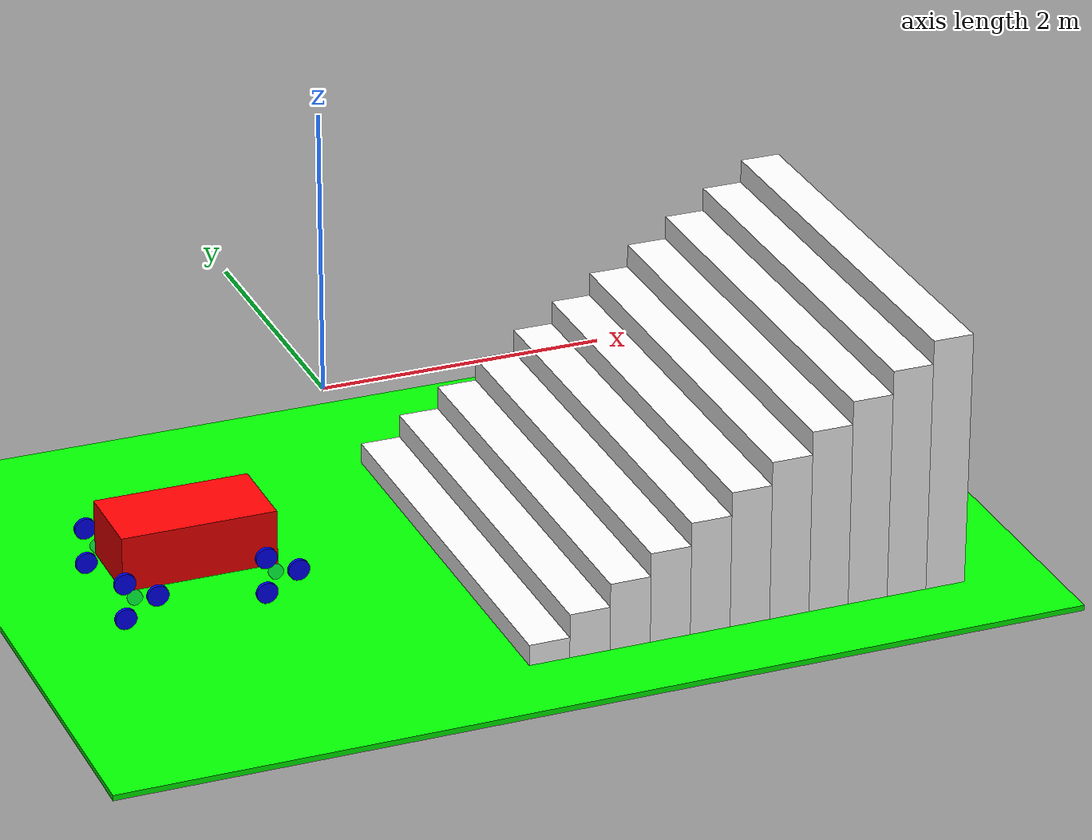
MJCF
<mujoco model="env">
    <option timestep="0.005" />
    <actuator>
        <velocity gear="1.0" ctrllimited = "false" ctrlrange="-40.0 40.0" joint="wheel00" name="motor00"/>
        <velocity gear="1.0" ctrllimited = "false" ctrlrange="-40.0 40.0" joint="wheel01" name="motor01"/>
        <velocity gear="1.0" ctrllimited = "false" ctrlrange="-40.0 40.0" joint="wheel01" name="motor02"/>
        <velocity gear="1.0" ctrllimited = "false" ctrlrange="-40.0 40.0" joint="wheel01" name="motor03"/>
        <velocity gear="1.0" ctrllimited = "false" ctrlrange="-40.0 40.0" joint="wheel10" name="motor10"/>
        <velocity gear="1.0" ctrllimited = "false" ctrlrange="-40.0 40.0" joint="wheel11" name="motor11"/>
        <velocity gear="1.0" ctrllimited = "false" ctrlrange="-40.0 40.0" joint="wheel12" name="motor12"/>
        <velocity gear="1.0" ctrllimited = "false" ctrlrange="-40.0 40.0" joint="wheel13" name="motor13"/>
        <velocity gear="1.0" ctrllimited = "false" ctrlrange="-40.0 40.0" joint="wheel20" name="motor20"/>
        <velocity gear="1.0" ctrllimited = "false" ctrlrange="-40.0 40.0" joint="wheel21" name="motor21"/>
        <velocity gear="1.0" ctrllimited = "false" ctrlrange="-40.0 40.0" joint="wheel22" name="motor22"/>
        <velocity gear="1.0" ctrllimited = "false" ctrlrange="-40.0 40.0" joint="wheel23" name="motor23"/>
        <velocity gear="1.0" ctrllimited = "false" ctrlrange="-40.0 40.0" joint="wheel30" name="motor30"/>
        <velocity gear="1.0" ctrllimited = "false" ctrlrange="-40.0 40.0" joint="wheel31" name="motor31"/>
        <velocity gear="1.0" ctrllimited = "false" ctrlrange="-40.0 40.0" joint="wheel32" name="motor32"/>
        <velocity gear="1.0" ctrllimited = "false" ctrlrange="-40.0 40.0" joint="wheel33" name="motor33"/>
    </actuator>

    <worldbody>
        <body name="frame" pos="-1.0 0 -0.9" quat="1.0 0.0 0 0">
            <geom mass="50.0" pos="0 0 0" rgba="1 0 0 1" size="0.55 0.3 0.2" type="box"></geom>
            <joint type='free' name='frame:base' pos='0 0 0'/>
			<camera euler="0 0 0" fovy="40" name="rgb" pos="0 0 2.5"></camera>

            <body name="lf_wheel_asm" pos="0.5 -0.4 -0.2" quat="0.7071067811865476 0.7071067811865476 0 0">
                <geom mass="0.0001" rgba="0 0 1 0.25" size="0.0524 0.0125" type="cylinder"/>
                <joint axis="0 0 1" name="wheel00" type="hinge"/>

                <body name="lf_wheel_0" pos="0.1524 0.0 0.03">
                    <geom mass="1" rgba="0 0 1 1" size="0.0762 0.0125" type="cylinder"/>
                    <joint axis="0 0 1" name="wheel01" type="hinge"/>
                </body>

                <body name="lf_wheel_1" pos="-0.0762 0.13198 0.03">
                    <geom mass="1" rgba="0 0 1 1" size="0.0762 0.0125" type="cylinder"/>
                    <joint axis="0 0 1" name="wheel02" type="hinge"/>
                </body>

                <body name="lf_wheel_2" pos="-0.0762 -0.13198 0.03" >
                    <geom mass="1" rgba="0 0 1 1" size="0.0762 0.0125" type="cylinder"/>
                    <joint axis="0 0 1" name="wheel03" type="hinge"/>
                </body>
            </body>

            <body name="rf_wheel_asm" pos="0.5 0.4 -0.2" quat="0.7071067811865476 0.7071067811865476 0 0">
                <geom mass="1" rgba="0 0 1 0.25" size="0.0524 0.0125" type="cylinder"/>
                <joint axis="0 0 1" name="wheel10" type="hinge"/>

                <body name="rf_wheel_0" pos="0.1524 0.0 -0.03">
                    <geom mass="1" rgba="0 0 1 1" size="0.0762 0.0125" type="cylinder"/>
                    <joint axis="0 0 1" name="wheel11" type="hinge"/>
                </body>

                <body name="rf_wheel_1" pos="-0.0762 0.13198 -0.03">
                    <geom mass="1" rgba="0 0 1 1" size="0.0762 0.0125" type="cylinder"/>
                    <joint axis="0 0 1" name="wheel12" type="hinge"/>
                </body>

                <body name="rf_wheel_2" pos="-0.0762 -0.13198 -0.03" >
                    <geom mass="1" rgba="0 0 1 1" size="0.0762 0.0125" type="cylinder"/>
                    <joint axis="0 0 1" name="wheel13" type="hinge"/>
                </body>
            </body>

            <body name="lb_wheel_asm" pos="-0.5 -0.4 -0.2" quat="0.7071067811865476 0.7071067811865476 0 0">>
                <geom mass="1" rgba="0 0 1 0.25" size="0.0524 0.0125" type="cylinder"/>
                <joint axis="0 0 1" name="wheel20" type="hinge"/>
                <body name="lb_wheel_0" pos="0.1524 0.0 0.03">
                    <geom mass="1" rgba="0 0 1 1" size="0.0762 0.0125" type="cylinder"/>
                    <joint axis="0 0 1" name="wheel21" type="hinge"/>
                </body>

                <body name="lb_wheel_1" pos="-0.0762 0.13198 0.03">
                    <geom mass="1" rgba="0 0 1 1" size="0.0762 0.0125" type="cylinder"/>
                    <joint axis="0 0 1" name="wheel22" type="hinge"/>
                </body>

                <body name="lb_wheel_2" pos="-0.0762 -0.13198 0.03" >
                    <geom mass="1" rgba="0 0 1 1" size="0.0762 0.0125" type="cylinder"/>
                    <joint axis="0 0 1" name="wheel23" type="hinge"/>
                </body>
            </body>

            <body name="rb_wheel_asm" pos="-0.5 0.4 -0.2" quat="0.7071067811865476 0.7071067811865476 0 0">>
                <geom mass="1" rgba="0 0 1 0.25" size="0.0524 0.0125" type="cylinder"/>
                <joint axis="0 0 1" name="wheel30" type="hinge"/>

                <body name="rb_wheel_0" pos="0.1524 0.0 -0.03">
                    <geom mass="1" rgba="0 0 1 1" size="0.0762 0.0125" type="cylinder"/>
                    <joint axis="0 0 1" name="wheel31" type="hinge"/>
                </body>

                <body name="rb_wheel_1" pos="-0.0762 0.13198 -0.03">
                    <geom mass="1" rgba="0 0 1 1" size="0.0762 0.0125" type="cylinder"/>
                    <joint axis="0 0 1" name="wheel32" type="hinge"/>
                </body>

                <body name="rb_wheel_2" pos="-0.0762 -0.13198 -0.03" >
                    <geom mass="1" rgba="0 0 1 1" size="0.0762 0.0125" type="cylinder"/>
                    <joint axis="0 0 1" name="wheel33" type="hinge"/>
                </body>
            </body>
        </body>

        <body name="floor" pos="0 0 -1.5">
            <geom condim="3" size="20.0 20.0 0.02" rgba="0 1 0 1" type="box"/>
            <body name="step0" pos="1.0 0 0.08636">
                <geom condim="3" size="0.14605 1.61 0.08636" rgba="1 1 1 1" type="box"/>
            </body>
            <body name="step1" pos="1.2921 0.0 0.17272">
                <geom condim="3" size="0.14605 1.61 0.17272" rgba="1 1 1 1" type="box"/>
            </body>
            <body name="step2" pos="1.5842 0.0 0.25908">
                <geom condim="3" size="0.14605 1.61 0.25908" rgba="1 1 1 1" type="box"/>
            </body>
            <body name="step3" pos="1.8763 0.0 0.34544">
                <geom condim="3" size="0.14605 1.61 0.34544" rgba="1 1 1 1" type="box"/>
            </body>
            <body name="step4" pos="2.1684 0.0 0.4318">
                <geom condim="3" size="0.14605 1.61 0.4318" rgba="1 1 1 1" type="box"/>
            </body>
            <body name="step5" pos="2.4605 0.0 0.51816">
                <geom condim="3" size="0.14605 1.61 0.51816" rgba="1 1 1 1" type="box"/>
            </body>
            <body name="step6" pos="2.7526 0.0 0.60452">
                <geom condim="3" size="0.14605 1.61 0.60452" rgba="1 1 1 1" type="box"/>
            </body>
            <body name="step7" pos="3.0447 0.0 0.69088">
                <geom condim="3" size="0.14605 1.61 0.69088" rgba="1 1 1 1" type="box"/>
            </body>
            <body name="step8" pos="3.3368 0.0 0.77724">
                <geom condim="3" size="0.14605 1.61 0.77724" rgba="1 1 1 1" type="box"/>
            </body>
            <body name="step9" pos="3.6289 0.0 0.8636">
                <geom condim="3" size="0.14605 1.61 0.8636" rgba="1 1 1 1" type="box"/>
            </body>
            <body name="step10" pos="3.921 0.0 0.94996">
                <geom condim="3" size="0.14605 1.61 0.94996" rgba="1 1 1 1" type="box"/>
                <site name='wypt0' pos="0 0 0.94996" size='0.0005 0.0005 0.0005' rgba='1 1 0 1' type='sphere'/>
            </body>

        </body>
    </worldbody>

</mujoco>
